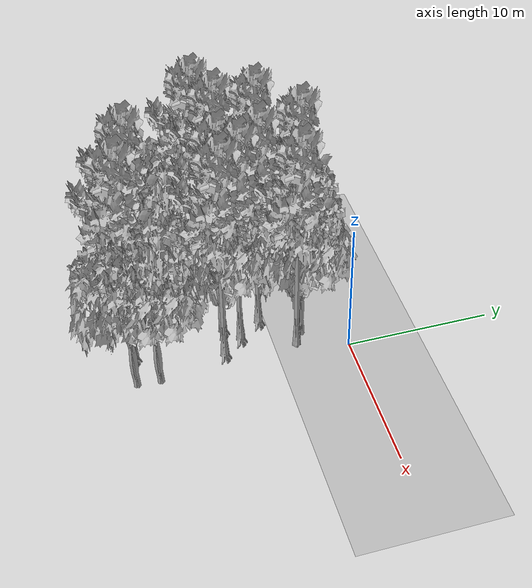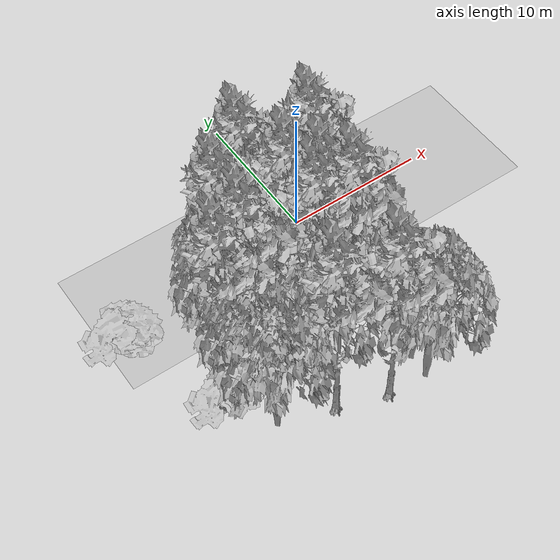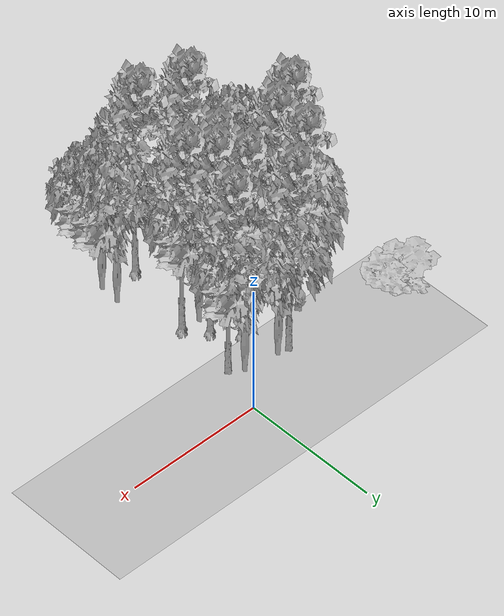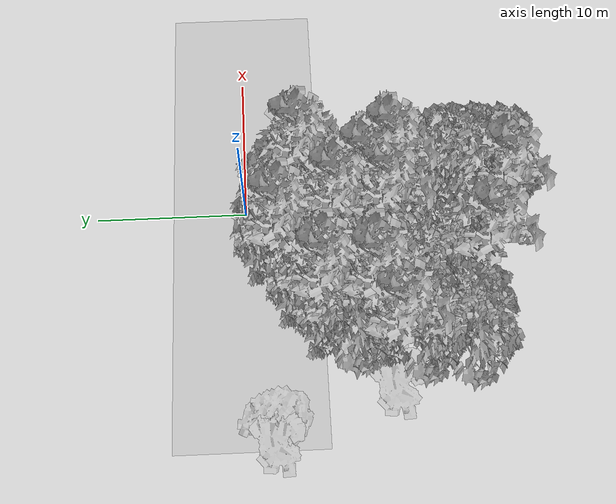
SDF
<sdf version="1.7">
 <world name="default">
  <model name="ground_plane">
   <static>1</static>
   <link name="link">
    <collision name="collision">
     <pose>-50 0 0 0 -0 0</pose>
     <geometry><plane><normal>0 0 1</normal><size>100 100</size></plane></geometry>
     <surface><contact><ode><min_depth>0.01</min_depth><max_vel>0</max_vel></ode></contact></surface>
    </collision>
    <visual name="grass">
     <cast_shadows>0</cast_shadows>
     <geometry>
      <mesh>
       <scale>0.5814285714285714 0.18142857142857144 0.1</scale>
       <uri>file://grass_plane/meshes/grass_plane.dae</uri>
      </mesh>
     </geometry>
    </visual>
   </link>
  </model>
  <model name="Tree 3">
   <static>1</static>
   <pose>-5.163711916937544 -2.2605145847753825 0 1.57079 -0 0</pose>
   <link name="link">
    <collision name="collision">
     <geometry><mesh><scale>3.5 5 3.5</scale><uri>model://tree_9/meshes/tree_9.obj</uri></mesh></geometry>
    </collision>
    <visual name="visual">
     <geometry><mesh><scale>3.5 5 3.5</scale><uri>model://tree_9/meshes/tree_9.obj</uri></mesh></geometry>
    </visual>
   </link>
  </model>
  <model name="Tree 25">
   <static>1</static>
   <pose>-10.352674955810421 -8.074041081286769 0 1.57079 -0 0</pose>
   <link name="link">
    <collision name="collision">
     <geometry><mesh><scale>3.5 5 3.5</scale><uri>model://tree_9/meshes/tree_9.obj</uri></mesh></geometry>
    </collision>
    <visual name="visual">
     <geometry><mesh><scale>3.5 5 3.5</scale><uri>model://tree_9/meshes/tree_9.obj</uri></mesh></geometry>
    </visual>
   </link>
  </model>
  <model name="Tree 37">
   <static>1</static>
   <pose>-6.239827570248593 -13.06177009463552 0 1.57079 -0 0</pose>
   <link name="link">
    <collision name="collision">
     <geometry><mesh><scale>3.5 5 3.5</scale><uri>model://tree_9/meshes/tree_9.obj</uri></mesh></geometry>
    </collision>
    <visual name="visual">
     <geometry><mesh><scale>3.5 5 3.5</scale><uri>model://tree_9/meshes/tree_9.obj</uri></mesh></geometry>
    </visual>
   </link>
  </model>
  <model name="Tree 48">
   <static>1</static>
   <pose>-4.490249685593625 -2.468591025788191 0 1.57079 -0 0</pose>
   <link name="link">
    <collision name="collision">
     <geometry><mesh><scale>3.5 5 3.5</scale><uri>model://tree_2/meshes/tree_2.obj</uri></mesh></geometry>
    </collision>
    <visual name="visual">
     <geometry><mesh><scale>3.5 5 3.5</scale><uri>model://tree_2/meshes/tree_2.obj</uri></mesh></geometry>
    </visual>
   </link>
  </model>
  <model name="Tree 52">
   <static>1</static>
   <pose>-13.9443910542901 -1.6979753278327507 0 1.57079 -0 0</pose>
   <link name="link">
    <collision name="collision">
     <geometry><mesh><scale>4 2.5 4</scale><uri>model://tree_1/meshes/tree_1.obj</uri></mesh></geometry>
    </collision>
    <visual name="visual">
     <geometry><mesh><scale>4 2.5 4</scale><uri>model://tree_1/meshes/tree_1.obj</uri></mesh></geometry>
    </visual>
   </link>
  </model>
  <model name="Tree 54">
   <static>1</static>
   <pose>-1.5641764129482496 -8.25282880604739 0 1.57079 -0 0</pose>
   <link name="link">
    <collision name="collision">
     <geometry><mesh><scale>3.5 5 3.5</scale><uri>model://tree_9/meshes/tree_9.obj</uri></mesh></geometry>
    </collision>
    <visual name="visual">
     <geometry><mesh><scale>3.5 5 3.5</scale><uri>model://tree_9/meshes/tree_9.obj</uri></mesh></geometry>
    </visual>
   </link>
  </model>
  <model name="Tree 55">
   <static>1</static>
   <pose>-2.924482535987252 -8.037760358878261 0 1.57079 -0 0</pose>
   <link name="link">
    <collision name="collision">
     <geometry><mesh><scale>3.5 5 3.5</scale><uri>model://tree_2/meshes/tree_2.obj</uri></mesh></geometry>
    </collision>
    <visual name="visual">
     <geometry><mesh><scale>3.5 5 3.5</scale><uri>model://tree_2/meshes/tree_2.obj</uri></mesh></geometry>
    </visual>
   </link>
  </model>
  <model name="Tree 88">
   <static>1</static>
   <pose>-2.712998318760441 -6.871057839162079 0 1.57079 -0 0</pose>
   <link name="link">
    <collision name="collision">
     <geometry><mesh><scale>3.5 5 3.5</scale><uri>model://tree_9/meshes/tree_9.obj</uri></mesh></geometry>
    </collision>
    <visual name="visual">
     <geometry><mesh><scale>3.5 5 3.5</scale><uri>model://tree_9/meshes/tree_9.obj</uri></mesh></geometry>
    </visual>
   </link>
  </model>
  <model name="Tree 90">
   <static>1</static>
   <pose>-7.103568015580862 -4.181556252329397 0 1.57079 -0 0</pose>
   <link name="link">
    <collision name="collision">
     <geometry><mesh><scale>3.5 5 3.5</scale><uri>model://tree_2/meshes/tree_2.obj</uri></mesh></geometry>
    </collision>
    <visual name="visual">
     <geometry><mesh><scale>3.5 5 3.5</scale><uri>model://tree_2/meshes/tree_2.obj</uri></mesh></geometry>
    </visual>
   </link>
  </model>
  <model name="Tree 112">
   <static>1</static>
   <pose>-9.898161574160838 -11.995397792701091 0 1.57079 -0 0</pose>
   <link name="link">
    <collision name="collision">
     <geometry><mesh><scale>3.5 5 3.5</scale><uri>model://tree_2/meshes/tree_2.obj</uri></mesh></geometry>
    </collision>
    <visual name="visual">
     <geometry><mesh><scale>3.5 5 3.5</scale><uri>model://tree_2/meshes/tree_2.obj</uri></mesh></geometry>
    </visual>
   </link>
  </model>
  <model name="Tree 114">
   <static>1</static>
   <pose>-9.573472817993256 -9.391575290781308 0 1.57079 -0 0</pose>
   <link name="link">
    <collision name="collision">
     <geometry><mesh><scale>3.5 5 3.5</scale><uri>model://tree_2/meshes/tree_2.obj</uri></mesh></geometry>
    </collision>
    <visual name="visual">
     <geometry><mesh><scale>3.5 5 3.5</scale><uri>model://tree_2/meshes/tree_2.obj</uri></mesh></geometry>
    </visual>
   </link>
  </model>
  <model name="Tree 121">
   <static>1</static>
   <pose>-0.9983583267861675 -3.4012859461422167 0 1.57079 -0 0</pose>
   <link name="link">
    <collision name="collision">
     <geometry><mesh><scale>3.5 5 3.5</scale><uri>model://tree_9/meshes/tree_9.obj</uri></mesh></geometry>
    </collision>
    <visual name="visual">
     <geometry><mesh><scale>3.5 5 3.5</scale><uri>model://tree_9/meshes/tree_9.obj</uri></mesh></geometry>
    </visual>
   </link>
  </model>
  <model name="Tree 128">
   <static>1</static>
   <pose>-0.33016166351116993 -12.87894613032056 0 1.57079 -0 0</pose>
   <link name="link">
    <collision name="collision">
     <geometry><mesh><scale>3.5 5 3.5</scale><uri>model://tree_2/meshes/tree_2.obj</uri></mesh></geometry>
    </collision>
    <visual name="visual">
     <geometry><mesh><scale>3.5 5 3.5</scale><uri>model://tree_2/meshes/tree_2.obj</uri></mesh></geometry>
    </visual>
   </link>
  </model>
  <model name="Tree 150">
   <static>1</static>
   <pose>-8.086383239284565 -4.461041339130437 0 1.57079 -0 0</pose>
   <link name="link">
    <collision name="collision">
     <geometry><mesh><scale>3.5 5 3.5</scale><uri>model://tree_9/meshes/tree_9.obj</uri></mesh></geometry>
    </collision>
    <visual name="visual">
     <geometry><mesh><scale>3.5 5 3.5</scale><uri>model://tree_9/meshes/tree_9.obj</uri></mesh></geometry>
    </visual>
   </link>
  </model>
  <model name="Tree 155">
   <static>1</static>
   <pose>-2.967448838416601 -14.137299812824626 0 1.57079 -0 0</pose>
   <link name="link">
    <collision name="collision">
     <geometry><mesh><scale>3.5 5 3.5</scale><uri>model://tree_9/meshes/tree_9.obj</uri></mesh></geometry>
    </collision>
    <visual name="visual">
     <geometry><mesh><scale>3.5 5 3.5</scale><uri>model://tree_9/meshes/tree_9.obj</uri></mesh></geometry>
    </visual>
   </link>
  </model>
  <model name="Tree 178">
   <static>1</static>
   <pose>-3.945731208392992 -5.285473073905607 0 1.57079 -0 0</pose>
   <link name="link">
    <collision name="collision">
     <geometry><mesh><scale>3.5 5 3.5</scale><uri>model://tree_9/meshes/tree_9.obj</uri></mesh></geometry>
    </collision>
    <visual name="visual">
     <geometry><mesh><scale>3.5 5 3.5</scale><uri>model://tree_9/meshes/tree_9.obj</uri></mesh></geometry>
    </visual>
   </link>
  </model>
  <model name="Tree 184">
   <static>1</static>
   <pose>-10.071698728858586 -7.882082283893057 0 1.57079 -0 0</pose>
   <link name="link">
    <collision name="collision">
     <geometry><mesh><scale>4 2.5 4</scale><uri>model://tree_1/meshes/tree_1.obj</uri></mesh></geometry>
    </collision>
    <visual name="visual">
     <geometry><mesh><scale>4 2.5 4</scale><uri>model://tree_1/meshes/tree_1.obj</uri></mesh></geometry>
    </visual>
   </link>
  </model>
  <model name="Tree 193">
   <static>1</static>
   <pose>-11.901345777492388 -9.42607606076173 0 1.57079 -0 0</pose>
   <link name="link">
    <collision name="collision">
     <geometry><mesh><scale>3 2 3</scale><uri>model://tree_3/meshes/tree_3.obj</uri></mesh></geometry>
    </collision>
    <visual name="visual">
     <geometry><mesh><scale>3 2 3</scale><uri>model://tree_3/meshes/tree_3.obj</uri></mesh></geometry>
    </visual>
   </link>
  </model>
  <model name="Tree 206">
   <static>1</static>
   <pose>-3.7911337587544125 -7.855347895367951 0 1.57079 -0 0</pose>
   <link name="link">
    <collision name="collision">
     <geometry><mesh><scale>3.5 5 3.5</scale><uri>model://tree_9/meshes/tree_9.obj</uri></mesh></geometry>
    </collision>
    <visual name="visual">
     <geometry><mesh><scale>3.5 5 3.5</scale><uri>model://tree_9/meshes/tree_9.obj</uri></mesh></geometry>
    </visual>
   </link>
  </model>
  <model name="Tree 211">
   <static>1</static>
   <pose>-8.955321762979402 -5.670073142460657 0 1.57079 -0 0</pose>
   <link name="link">
    <collision name="collision">
     <geometry><mesh><scale>3.5 5 3.5</scale><uri>model://tree_2/meshes/tree_2.obj</uri></mesh></geometry>
    </collision>
    <visual name="visual">
     <geometry><mesh><scale>3.5 5 3.5</scale><uri>model://tree_2/meshes/tree_2.obj</uri></mesh></geometry>
    </visual>
   </link>
  </model>
  <model name="Tree 228">
   <static>1</static>
   <pose>-7.223756440602465 -9.997024311209364 0 1.57079 -0 0</pose>
   <link name="link">
    <collision name="collision">
     <geometry><mesh><scale>3 2 3</scale><uri>model://tree_3/meshes/tree_3.obj</uri></mesh></geometry>
    </collision>
    <visual name="visual">
     <geometry><mesh><scale>3 2 3</scale><uri>model://tree_3/meshes/tree_3.obj</uri></mesh></geometry>
    </visual>
   </link>
  </model>
  <model name="Tree 260">
   <static>1</static>
   <pose>-8.21563887684983 -7.084265326378377 0 1.57079 -0 0</pose>
   <link name="link">
    <collision name="collision">
     <geometry><mesh><scale>3.5 5 3.5</scale><uri>model://tree_9/meshes/tree_9.obj</uri></mesh></geometry>
    </collision>
    <visual name="visual">
     <geometry><mesh><scale>3.5 5 3.5</scale><uri>model://tree_9/meshes/tree_9.obj</uri></mesh></geometry>
    </visual>
   </link>
  </model>
  <model name="Tree 264">
   <static>1</static>
   <pose>-6.360120606036318 -11.308116167527189 0 1.57079 -0 0</pose>
   <link name="link">
    <collision name="collision">
     <geometry><mesh><scale>3.5 5 3.5</scale><uri>model://tree_2/meshes/tree_2.obj</uri></mesh></geometry>
    </collision>
    <visual name="visual">
     <geometry><mesh><scale>3.5 5 3.5</scale><uri>model://tree_2/meshes/tree_2.obj</uri></mesh></geometry>
    </visual>
   </link>
  </model>
  <model name="Tree 265">
   <static>1</static>
   <pose>-1.9888378213256317 -2.84421449408919 0 1.57079 -0 0</pose>
   <link name="link">
    <collision name="collision">
     <geometry><mesh><scale>3.5 5 3.5</scale><uri>model://tree_2/meshes/tree_2.obj</uri></mesh></geometry>
    </collision>
    <visual name="visual">
     <geometry><mesh><scale>3.5 5 3.5</scale><uri>model://tree_2/meshes/tree_2.obj</uri></mesh></geometry>
    </visual>
   </link>
  </model>
  <model name="Tree 273">
   <static>1</static>
   <pose>-0.4426364869274835 -14.425397892345341 0 1.57079 -0 0</pose>
   <link name="link">
    <collision name="collision">
     <geometry><mesh><scale>3.5 5 3.5</scale><uri>model://tree_2/meshes/tree_2.obj</uri></mesh></geometry>
    </collision>
    <visual name="visual">
     <geometry><mesh><scale>3.5 5 3.5</scale><uri>model://tree_2/meshes/tree_2.obj</uri></mesh></geometry>
    </visual>
   </link>
  </model>
  <model name="Tree 293">
   <static>1</static>
   <pose>-14.98282305369051 -1.9653452346701616 0 1.57079 -0 0</pose>
   <link name="link">
    <collision name="collision">
     <geometry><mesh><scale>3 2 3</scale><uri>model://tree_3/meshes/tree_3.obj</uri></mesh></geometry>
    </collision>
    <visual name="visual">
     <geometry><mesh><scale>3 2 3</scale><uri>model://tree_3/meshes/tree_3.obj</uri></mesh></geometry>
    </visual>
   </link>
  </model>
 </world>
</sdf>
